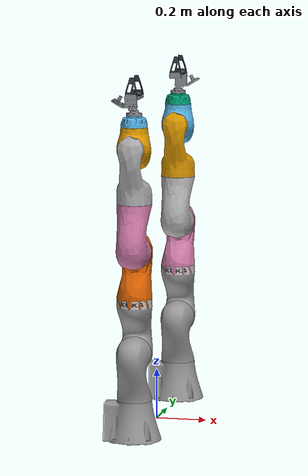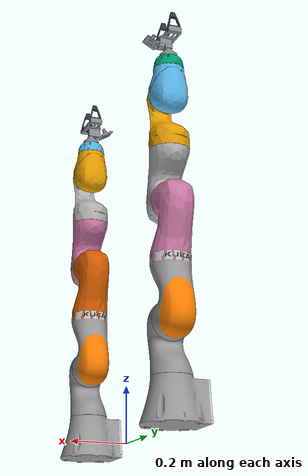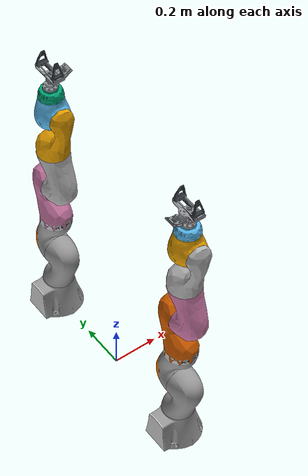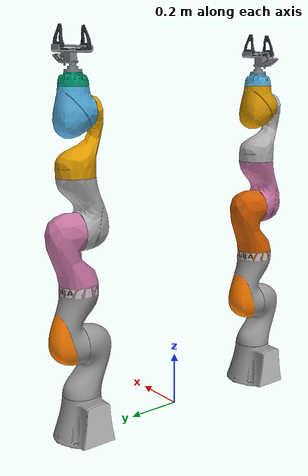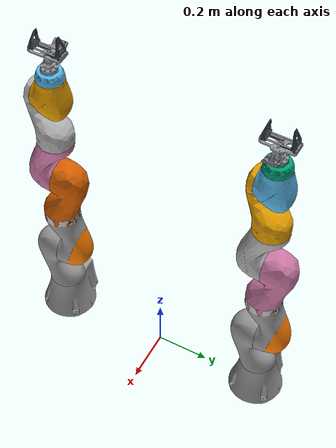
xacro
<?xml version="1.0"?>

<robot name="lbr_dual_arm" xmlns:xacro="http://www.ros.org/wiki/xacro">
    <!-- include the lbr iiwa macro -->
    <xacro:include filename="$(find lbr_description)/urdf/iiwa7/iiwa7_description.xacro" />

    <xacro:include filename="$(find lbr_description)/gazebo/lbr_gazebo.xacro" />

    <!-- include the Y-gripper macro -->
    <xacro:include filename="$(find lbr_dual_arm_description)/urdf/y_gripper.xacro" />

    <!-- include the pdz gripper macro (assets/pdz_gripper_description in the Fabrica repo,
    symlinked into this workspace's src/) -->
    <xacro:include filename="$(find pdz_gripper_description)/urdf/pdz_gripper_macro.xacro" />

    <!-- add an arguent to allow for mock / hardware / gazebo -->
    <xacro:arg name="mode" default="mock" />
    <xacro:property name="mode" value="$(arg mode)" />

    <!-- attach a Y-gripper to each arm's link_7 by default; pass
    use_gripper:=false for the bare flange (no end effector attached) -->
    <xacro:arg name="use_gripper" default="true" />
    <xacro:property name="use_gripper" value="$(arg use_gripper)" />

    <xacro:arg name="gripper" default="y_gripper" />
    <xacro:property name="gripper" value="$(arg gripper)" />

    <xacro:arg name="arm_control" default="joint_trajectory" />
    <xacro:property name="arm_control" value="$(arg arm_control)" />
    <xacro:property name="gazebo_command_mode"
        value="${'effort' if arm_control == 'cartesian_impedance' else 'position'}" />

    <xacro:arg name="robot_name" default="lbr_dual_arm_pdz" />
    <xacro:property name="robot_name" value="$(arg robot_name)" />

    <!-- collapse to the single combined plugin instance for gripper:=pdz OR for the
    cartesian-impedance bringup (both need "one controller_manager, two per-arm controller
    instances"). -->
    <xacro:property name="use_combined_gazebo_plugin"
        value="${gripper == 'pdz' or arm_control == 'cartesian_impedance'}" />
    <xacro:property name="spawn_gazebo_plugin" value="${not use_combined_gazebo_plugin}" />
    <xacro:property name="combined_gazebo_controllers_yaml"
        value="${'dual_arm_gazebo_cartesian_impedance_controllers.yaml' if arm_control == 'cartesian_impedance' else 'dual_arm_pdz_gazebo_controllers.yaml'}" />
    <xacro:property name="pdz_gazebo_controllers_yaml_path"
        value="$(find lbr_dual_arm_description)/ros2_control/${combined_gazebo_controllers_yaml}" />

    <xacro:property name="gazebo_robot_param_node" value="" />

    <xacro:arg name="arms" default="both" />
    <xacro:property name="arms" value="$(arg arms)" />
    <xacro:property name="lbr_one_mode" value="${'mock' if arms == 'lbr_two' else mode}" />
    <xacro:property name="lbr_two_mode" value="${'mock' if arms == 'lbr_one' else mode}" />

    <xacro:arg name="command_mode" default="position" />
    <xacro:property name="command_mode" value="$(arg command_mode)" />
    <xacro:property name="lbr_one_system_config"
        value="${'lbr_one_system_config_torque.yaml' if command_mode == 'torque' else 'lbr_one_system_config.yaml'}" />
    <xacro:property name="lbr_two_system_config"
        value="${'lbr_two_system_config_torque.yaml' if command_mode == 'torque' else 'lbr_two_system_config.yaml'}" />

    <!-- add a base link -->
    <link name="base_link" />

    <link name="world" />
    <joint name="world_joint" type="fixed">
        <parent link="world" />
        <child link="base_link" />
    </joint>

    <!-- add joints that connect the robots -->
    <joint name="lbr_one_base_joint" type="fixed">
        <origin xyz="0 -0.42 0" rpy="0 0 0" />
        <parent link="base_link" />
        <child link="lbr_one_link_0" />
    </joint>

    <joint name="lbr_two_base_joint" type="fixed">
        <origin xyz="0 0.42 0" rpy="0 0 0" />
        <parent link="base_link" />
        <child link="lbr_two_link_0" />
    </joint>

    <!-- add robot 1 via macro, note that different lbr_one_system_config.yaml are used (to
    configure port id) -->
    <xacro:iiwa7
        robot_name="lbr_one"
        mode="${lbr_one_mode}"
        system_config_path="$(find lbr_dual_arm_description)/ros2_control/${lbr_one_system_config}"
        initial_joint_positions_path="$(find lbr_dual_arm_description)/ros2_control/initial_joint_positions.yaml"
        gazebo_controllers_yaml_path="$(find lbr_description)/ros2_control/lbr_controllers.yaml"
        gazebo_robot_param_node="${gazebo_robot_param_node}"
        gazebo_command_mode="${gazebo_command_mode}"
        spawn_gazebo_plugin="${spawn_gazebo_plugin}" />

    <!-- add robot 2 via macro -->
    <xacro:iiwa7
        robot_name="lbr_two"
        mode="${lbr_two_mode}"
        system_config_path="$(find lbr_dual_arm_description)/ros2_control/${lbr_two_system_config}"
        initial_joint_positions_path="$(find lbr_dual_arm_description)/ros2_control/initial_joint_positions.yaml"
        gazebo_controllers_yaml_path="$(find lbr_description)/ros2_control/lbr_controllers.yaml"
        gazebo_robot_param_node="${gazebo_robot_param_node}"
        gazebo_command_mode="${gazebo_command_mode}"
        spawn_gazebo_plugin="${spawn_gazebo_plugin}" />

    <xacro:if value="${mode == 'gazebo' and use_combined_gazebo_plugin}">
        <xacro:lbr_gazebo_plugin robot_name="${robot_name}"
            controllers_yaml_path="${pdz_gazebo_controllers_yaml_path}"
            robot_param_node="${gazebo_robot_param_node}" />
    </xacro:if>

    <xacro:if value="${use_gripper}">
        <xacro:if value="${gripper == 'y_gripper'}">
            <xacro:y_gripper robot_name="lbr_one" mount_yaw="3.1415926535897931"
                camera_xyz="-0.055667 -0.009000 0.070776"
                camera_rpy="-0.523599 0.0 -1.570796"
                camera_to_tcp_xyz="-0.009000 0.010847 0.092546"
                camera_to_tcp_rpy="0.0 -0.523599 1.570796" />
            <xacro:y_gripper robot_name="lbr_two" />
        </xacro:if>

        <xacro:property name="pdz_gripper_hw_plugin"
            value="${'gz_ros2_control/GazeboSimSystem' if mode == 'gazebo' else 'mock_components/GenericSystem'}" />
        <xacro:if value="${gripper == 'pdz'}">
            <xacro:pdz_gripper parent="lbr_one_link_ee" prefix="lbr_one_">
                <origin xyz="0 0 0" rpy="0 0 -1.5707963267948966" />
            </xacro:pdz_gripper>
            <ros2_control name="lbr_one_pdz_gripper_system" type="system">
                <hardware>
                    <plugin>${pdz_gripper_hw_plugin}</plugin>
                </hardware>
                <joint name="lbr_one_pdz_gripper_left_finger_joint">
                    <command_interface name="position">
                        <param name="min">0</param>
                        <param name="max">0.032</param>
                    </command_interface>
                    <state_interface name="position">
                        <param name="initial_value">0.0</param>
                    </state_interface>
                    <state_interface name="velocity" />
                </joint>
                <joint name="lbr_one_pdz_gripper_right_finger_joint">
                    <state_interface name="position">
                        <param name="initial_value">0.0</param>
                    </state_interface>
                    <state_interface name="velocity" />
                </joint>
            </ros2_control>

            <xacro:pdz_gripper parent="lbr_two_link_ee" prefix="lbr_two_">
                <origin xyz="0 0 0" rpy="0 0 -1.5707963267948966" />
            </xacro:pdz_gripper>
            <ros2_control name="lbr_two_pdz_gripper_system" type="system">
                <hardware>
                    <plugin>${pdz_gripper_hw_plugin}</plugin>
                </hardware>
                <joint name="lbr_two_pdz_gripper_left_finger_joint">
                    <command_interface name="position">
                        <param name="min">0</param>
                        <param name="max">0.032</param>
                    </command_interface>
                    <state_interface name="position">
                        <param name="initial_value">0.0</param>
                    </state_interface>
                    <state_interface name="velocity" />
                </joint>
                <joint name="lbr_two_pdz_gripper_right_finger_joint">
                    <state_interface name="position">
                        <param name="initial_value">0.0</param>
                    </state_interface>
                    <state_interface name="velocity" />
                </joint>
            </ros2_control>
        </xacro:if>
    </xacro:if>
</robot>

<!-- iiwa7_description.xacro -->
<robot xmlns:xacro="http://www.ros.org/wiki/xacro">
    <!-- robot as extracted via https://github.com/syuntoku14/fusion2urdf -->
    <xacro:macro name="iiwa7"
        params="robot_name:=^|lbr mode:=^|mock system_config_path:=^|'$(find lbr_description)/ros2_control/lbr_system_config.yaml' joint_limits_path:=^|'$(find lbr_description)/urdf/iiwa7/joint_limits.yaml' initial_joint_positions_path:=^|'$(find lbr_description)/ros2_control/initial_joint_positions.yaml'">

        <!-- includes -->
        <xacro:include filename="$(find lbr_description)/gazebo/lbr_gazebo.xacro" />
        <xacro:include filename="$(find lbr_description)/ros2_control/lbr_system_interface.xacro" />

        <!-- joint limits via yaml -->
        <xacro:property name="joint_limits" value="${xacro.load_yaml(joint_limits_path)}" />

        <!-- constants -->
        <xacro:property name="PI" value="3.1415926535897931" />
        <xacro:property name="joint_damping" value="10.0" />
        <xacro:property name="joint_friction" value="0.1" />

        <!-- macros for gazebo / mock / hardware -->
        <xacro:lbr_gazebo robot_name="${robot_name}" />
        <xacro:lbr_system_interface
            robot_name="${robot_name}"
            mode="${mode}"
            joint_limits="${joint_limits}"
            system_config_path="${system_config_path}"
            initial_joint_positions_path="${initial_joint_positions_path}" />

        <link name="${robot_name}_link_0">
            <inertial>
                <origin rpy="0 0 0" xyz="-0.012857 0.0 0.069964" />
                <mass value="4.855658" />
                <inertia ixx="0.017839" ixy="0.0" ixz="0.000781" iyy="0.022294" iyz="0.0"
                    izz="0.021334" />
            </inertial>
            <visual>
                <origin rpy="0 0 0" xyz="0 0 0" />
                <geometry>
                    <mesh filename="package://lbr_description/meshes/iiwa7/visual/link_0.dae" />
                </geometry>
            </visual>
            <collision>
                <origin rpy="0 0 0" xyz="0 0 0" />
                <geometry>
                    <mesh filename="package://lbr_description/meshes/iiwa7/collision/link_0.stl" />
                </geometry>
            </collision>
        </link>

        <joint name="${robot_name}_A1" type="revolute">
            <origin rpy="0 0 0" xyz="0.0 0.0 0.1475" />
            <parent link="${robot_name}_link_0" />
            <child link="${robot_name}_link_1" />
            <axis xyz="0.0 0.0 1.0" />
            <limit
                effort="${joint_limits['A1']['effort']}"
                lower="${joint_limits['A1']['lower'] * PI / 180}"
                upper="${joint_limits['A1']['upper'] * PI / 180}"
                velocity="${joint_limits['A1']['velocity'] * PI / 180}" />
            <safety_controller
                soft_lower_limit="${joint_limits['A1']['lower'] * PI / 180}"
                soft_upper_limit="${joint_limits['A1']['upper'] * PI / 180}"
                k_position="${joint_limits['A1']['velocity'] / joint_limits['A1']['safety_position_margin']}"
                k_velocity="${joint_limits['A1']['k_velocity']}" />
            <dynamics damping="${joint_damping}" friction="${joint_friction}" />
        </joint>

        <link name="${robot_name}_link_1">
            <inertial>
                <origin rpy="0 0 0" xyz="0.0 -0.034819 0.123299" />
                <mass value="3.394011" />
                <inertia ixx="0.021383" ixy="0.0" ixz="0.0" iyy="0.020403" iyz="0.003797"
                    izz="0.007563" />
            </inertial>
            <visual>
                <origin rpy="0 0 0" xyz="0.0 0.0 -0.1475" />
                <geometry>
                    <mesh filename="package://lbr_description/meshes/iiwa7/visual/link_1.dae" />
                </geometry>
            </visual>
            <collision>
                <origin rpy="0 0 0" xyz="0.0 0.0 -0.1475" />
                <geometry>
                    <mesh filename="package://lbr_description/meshes/iiwa7/collision/link_1.stl" />
                </geometry>
            </collision>
        </link>

        <joint name="${robot_name}_A2" type="revolute">
            <origin rpy="0 0 0" xyz="0.0 -0.0105 0.1925" />
            <parent link="${robot_name}_link_1" />
            <child link="${robot_name}_link_2" />
            <axis xyz="0.0 1.0 0.0" />
            <limit
                effort="${joint_limits['A2']['effort']}"
                lower="${joint_limits['A2']['lower'] * PI / 180}"
                upper="${joint_limits['A2']['upper'] * PI / 180}"
                velocity="${joint_limits['A2']['velocity'] * PI / 180}" />
            <safety_controller
                soft_lower_limit="${joint_limits['A2']['lower'] * PI / 180}"
                soft_upper_limit="${joint_limits['A2']['upper'] * PI / 180}"
                k_position="${joint_limits['A2']['velocity'] / joint_limits['A2']['safety_position_margin']}"
                k_velocity="${joint_limits['A2']['k_velocity']}" />
            <dynamics damping="${joint_damping}" friction="${joint_friction}" />
        </joint>

        <link name="${robot_name}_link_2">
            <inertial>
                <origin rpy="0 0 0" xyz="0.0 0.039793 0.086944" />
                <mass value="4.031991" />
                <inertia ixx="0.031697" ixy="0.0" ixz="0.0" iyy="0.03008" iyz="0.005889"
                    izz="0.009666" />
            </inertial>
            <visual>
                <origin rpy="0 0 0" xyz="0.0 0.0105 -0.34" />
                <geometry>
                    <mesh filename="package://lbr_description/meshes/iiwa7/visual/link_2.dae" />
                </geometry>
            </visual>
            <collision>
                <origin rpy="0 0 0" xyz="0.0 0.0105 -0.34" />
                <geometry>
                    <mesh filename="package://lbr_description/meshes/iiwa7/collision/link_2.stl" />
                </geometry>
            </collision>
        </link>

        <joint name="${robot_name}_A3" type="revolute">
            <origin rpy="0 0 0" xyz="0.0 0.0105 0.2075" />
            <parent link="${robot_name}_link_2" />
            <child link="${robot_name}_link_3" />
            <axis xyz="0.0 0.0 1.0" />
            <limit
                effort="${joint_limits['A3']['effort']}"
                lower="${joint_limits['A3']['lower'] * PI / 180}"
                upper="${joint_limits['A3']['upper'] * PI / 180}"
                velocity="${joint_limits['A3']['velocity'] * PI / 180}" />
            <safety_controller
                soft_lower_limit="${joint_limits['A3']['lower'] * PI / 180}"
                soft_upper_limit="${joint_limits['A3']['upper'] * PI / 180}"
                k_position="${joint_limits['A3']['velocity'] / joint_limits['A3']['safety_position_margin']}"
                k_velocity="${joint_limits['A3']['k_velocity']}" />
            <dynamics damping="${joint_damping}" friction="${joint_friction}" />
        </joint>

        <link name="${robot_name}_link_3">
            <inertial>
                <origin rpy="0 0 0" xyz="0.0 0.034819 0.123299" />
                <mass value="3.394011" />
                <inertia ixx="0.021383" ixy="0.0" ixz="0.0" iyy="0.020403" iyz="-0.003797"
                    izz="0.007563" />
            </inertial>
            <visual>
                <origin rpy="0 0 0" xyz="0.0 0.0 -0.5475" />
                <geometry>
                    <mesh filename="package://lbr_description/meshes/iiwa7/visual/link_3.dae" />
                </geometry>
            </visual>
            <collision>
                <origin rpy="0 0 0" xyz="0.0 0.0 -0.5475" />
                <geometry>
                    <mesh filename="package://lbr_description/meshes/iiwa7/collision/link_3.stl" />
                </geometry>
            </collision>
        </link>

        <joint name="${robot_name}_A4" type="revolute">
            <origin rpy="0 0 0" xyz="0.0 0.0105 0.1925" />
            <parent link="${robot_name}_link_3" />
            <child link="${robot_name}_link_4" />
            <axis xyz="0.0 -1.0 0.0" />
            <limit
                effort="${joint_limits['A4']['effort']}"
                lower="${joint_limits['A4']['lower'] * PI / 180}"
                upper="${joint_limits['A4']['upper'] * PI / 180}"
                velocity="${joint_limits['A4']['velocity'] * PI / 180}" />
            <safety_controller
                soft_lower_limit="${joint_limits['A4']['lower'] * PI / 180}"
                soft_upper_limit="${joint_limits['A4']['upper'] * PI / 180}"
                k_position="${joint_limits['A4']['velocity'] / joint_limits['A4']['safety_position_margin']}"
                k_velocity="${joint_limits['A4']['k_velocity']}" />
            <dynamics damping="${joint_damping}" friction="${joint_friction}" />
        </joint>

        <link name="${robot_name}_link_4">
            <inertial>
                <origin rpy="0 0 0" xyz="0.0 -0.039793 0.086944" />
                <mass value="4.031989" />
                <inertia ixx="0.031695" ixy="0.0" ixz="0.0" iyy="0.030079" iyz="-0.005889"
                    izz="0.009665" />
            </inertial>
            <visual>
                <origin rpy="0 0 0" xyz="0.0 -0.0105 -0.74" />
                <geometry>
                    <mesh filename="package://lbr_description/meshes/iiwa7/visual/link_4.dae" />
                </geometry>
            </visual>
            <collision>
                <origin rpy="0 0 0" xyz="0.0 -0.0105 -0.74" />
                <geometry>
                    <mesh filename="package://lbr_description/meshes/iiwa7/collision/link_4.stl" />
                </geometry>
            </collision>
        </link>

        <joint name="${robot_name}_A5" type="revolute">
            <origin rpy="0 0 0" xyz="0.0 -0.0105 0.2075" />
            <parent link="${robot_name}_link_4" />
            <child link="${robot_name}_link_5" />
            <axis xyz="0.0 0.0 1.0" />
            <limit
                effort="${joint_limits['A5']['effort']}"
                lower="${joint_limits['A5']['lower'] * PI / 180}"
                upper="${joint_limits['A5']['upper'] * PI / 180}"
                velocity="${joint_limits['A5']['velocity'] * PI / 180}" />
            <safety_controller
                soft_lower_limit="${joint_limits['A5']['lower'] * PI / 180}"
                soft_upper_limit="${joint_limits['A5']['upper'] * PI / 180}"
                k_position="${joint_limits['A5']['velocity'] / joint_limits['A5']['safety_position_margin']}"
                k_velocity="${joint_limits['A5']['k_velocity']}" />
            <dynamics damping="${joint_damping}" friction="${joint_friction}" />
        </joint>

        <link name="${robot_name}_link_5">
            <inertial>
                <origin rpy="0 0 0" xyz="0.0 -0.029824 0.076267" />
                <mass value="1.529239" />
                <inertia ixx="0.008485" ixy="0.0" ixz="0.0" iyy="0.007136" iyz="0.002806"
                    izz="0.003848" />
            </inertial>
            <visual>
                <origin rpy="0 0 0" xyz="0.0 0.0 -0.9475" />
                <geometry>
                    <mesh filename="package://lbr_description/meshes/iiwa7/visual/link_5.dae" />
                </geometry>
            </visual>
            <collision>
                <origin rpy="0 0 0" xyz="0.0 0.0 -0.9475" />
                <geometry>
                    <mesh filename="package://lbr_description/meshes/iiwa7/collision/link_5.stl" />
                </geometry>
            </collision>
        </link>

        <joint name="${robot_name}_A6" type="revolute">
            <origin rpy="0 0 0" xyz="0.0 -0.0707 0.1925" />
            <parent link="${robot_name}_link_5" />
            <child link="${robot_name}_link_6" />
            <axis xyz="0.0 1.0 0.0" />
            <limit
                effort="${joint_limits['A6']['effort']}"
                lower="${joint_limits['A6']['lower'] * PI / 180}"
                upper="${joint_limits['A6']['upper'] * PI / 180}"
                velocity="${joint_limits['A6']['velocity'] * PI / 180}" />
            <safety_controller
                soft_lower_limit="${joint_limits['A6']['lower'] * PI / 180}"
                soft_upper_limit="${joint_limits['A6']['upper'] * PI / 180}"
                k_position="${joint_limits['A6']['velocity'] / joint_limits['A6']['safety_position_margin']}"
                k_velocity="${joint_limits['A6']['k_velocity']}" />
            <dynamics damping="${joint_damping}" friction="${joint_friction}" />
        </joint>

        <link name="${robot_name}_link_6">
            <inertial>
                <origin rpy="0 0 0" xyz="0.0 0.07102 0.00495" />
                <mass value="2.403626" />
                <inertia ixx="0.007067" ixy="0.0" ixz="0.0" iyy="0.006804" iyz="0.000311"
                    izz="0.004629" />
            </inertial>
            <visual>
                <origin rpy="0 0 0" xyz="0.0 0.0707 -1.14" />
                <geometry>
                    <mesh filename="package://lbr_description/meshes/iiwa7/visual/link_6.dae" />
                </geometry>
            </visual>
            <collision>
                <origin rpy="0 0 0" xyz="0.0 0.0707 -1.14" />
                <geometry>
                    <mesh filename="package://lbr_description/meshes/iiwa7/collision/link_6.stl" />
                </geometry>
            </collision>
        </link>

        <joint name="${robot_name}_A7" type="revolute">
            <origin rpy="0 0 0" xyz="0.0 0.0707 0.091" />
            <parent link="${robot_name}_link_6" />
            <child link="${robot_name}_link_7" />
            <axis xyz="0.0 0.0 1.0" />
            <limit
                effort="${joint_limits['A7']['effort']}"
                lower="${joint_limits['A7']['lower'] * PI / 180}"
                upper="${joint_limits['A7']['upper'] * PI / 180}"
                velocity="${joint_limits['A7']['velocity'] * PI / 180}" />
            <safety_controller
                soft_lower_limit="${joint_limits['A7']['lower'] * PI / 180}"
                soft_upper_limit="${joint_limits['A7']['upper'] * PI / 180}"
                k_position="${joint_limits['A7']['velocity'] / joint_limits['A7']['safety_position_margin']}"
                k_velocity="${joint_limits['A7']['k_velocity']}" />
            <dynamics damping="${joint_damping}" friction="${joint_friction}" />
        </joint>

        <link name="${robot_name}_link_7">
            <inertial>
                <origin rpy="0 0 0" xyz="3.0000e-06 -2.0000e-06 1.3782e-02" />
                <mass value="0.259474" />
                <inertia ixx="0.000171" ixy="0.0" ixz="0.0" iyy="0.000171" iyz="0.0" izz="0.000299" />
            </inertial>
            <visual>
                <origin rpy="0 0 0" xyz="0.0 0.0 -1.231" />
                <geometry>
                    <mesh filename="package://lbr_description/meshes/iiwa7/visual/link_7.dae" />
                </geometry>
            </visual>
            <collision>
                <origin rpy="0 0 0" xyz="0.0 0.0 -1.231" />
                <geometry>
                    <mesh filename="package://lbr_description/meshes/iiwa7/collision/link_7.stl" />
                </geometry>
            </collision>
        </link>

        <joint name="${robot_name}_joint_ee" type="fixed">
            <parent link="${robot_name}_link_7" />
            <child link="${robot_name}_link_ee" />
            <origin xyz="0 0 0.035" rpy="0 0 0" />
        </joint>

        <link name="${robot_name}_link_ee">
        </link>
    </xacro:macro>
</robot>

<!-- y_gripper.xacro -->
<robot xmlns:xacro="http://www.ros.org/wiki/xacro">
    <xacro:macro name="y_gripper" params="
        robot_name
        mount_yaw:=0
        camera_xyz:='0.055667 0.009000 0.070776'
        camera_rpy:='-0.523599 0.0 1.570796'
        camera_to_tcp_xyz:='-0.009000 0.010847 0.092546'
        camera_to_tcp_rpy:='0.0 0.523599 -1.570796'">
        <link name="${robot_name}_gripper_base_link">
            <inertial>
                <origin xyz="0.0273839865 0 0.0414999998" rpy="0 0 0" />
                <mass value="0.8" />
                <inertia ixx="0.00166886667" ixy="0" ixz="0" iyy="0.00145432361" iyz="0"
                    izz="0.00196999027" />
            </inertial>
            <visual>
                <origin xyz="0 0 0" rpy="0 0 0" />
                <geometry>
                    <mesh filename="package://lbr_dual_arm_description/meshes/y_gripper/hand.STL"
                        scale="0.001 0.001 0.001" />
                </geometry>
                <material name="gripper_body">
                    <color rgba="0.55 0.56 0.58 1" />
                </material>
            </visual>
            <collision>
                <origin xyz="0 0 0" rpy="0 0 0" />
                <geometry>
                    <mesh filename="package://lbr_dual_arm_description/meshes/y_gripper/hand.STL"
                        scale="0.001 0.001 0.001" />
                </geometry>
            </collision>
        </link>

        <link name="${robot_name}_left_finger_link">
            <inertial>
                <origin xyz="0 -0.0275000005 0.1105" rpy="0 0 0" />
                <mass value="0.08" />
                <inertia ixx="6.74733326e-05" ixy="0" ixz="0" iyy="5.67733333e-05" iyz="0"
                    izz="3.89133326e-05" />
            </inertial>
            <visual>
                <origin xyz="0 0 0" rpy="0 0 0" />
                <geometry>
                    <mesh
                        filename="package://lbr_dual_arm_description/meshes/y_gripper/left_finger.STL"
                        scale="0.001 0.001 0.001" />
                </geometry>
                <material name="finger_dark">
                    <color rgba="0.17 0.2 0.22 1" />
                </material>
            </visual>
            <collision>
                <origin xyz="0 0 0" rpy="0 0 0" />
                <geometry>
                    <mesh
                        filename="package://lbr_dual_arm_description/meshes/y_gripper/left_finger.STL"
                        scale="0.001 0.001 0.001" />
                </geometry>
            </collision>
        </link>

        <link name="${robot_name}_right_finger_link">
            <inertial>
                <origin xyz="0 0.0275000005 0.1105" rpy="0 0 0" />
                <mass value="0.08" />
                <inertia ixx="6.74733326e-05" ixy="0" ixz="0" iyy="5.67733333e-05" iyz="0"
                    izz="3.89133326e-05" />
            </inertial>
            <visual>
                <origin xyz="0 0 0" rpy="0 0 0" />
                <geometry>
                    <mesh
                        filename="package://lbr_dual_arm_description/meshes/y_gripper/right_finger.STL"
                        scale="0.001 0.001 0.001" />
                </geometry>
                <material name="finger_dark">
                    <color rgba="0.17 0.2 0.22 1" />
                </material>
            </visual>
            <collision>
                <origin xyz="0 0 0" rpy="0 0 0" />
                <geometry>
                    <mesh
                        filename="package://lbr_dual_arm_description/meshes/y_gripper/right_finger.STL"
                        scale="0.001 0.001 0.001" />
                </geometry>
            </collision>
        </link>

        <link name="${robot_name}_gripper_tcp">
            <inertial>
                <origin xyz="0 0 0" rpy="0 0 0" />
                <mass value="0.001" />
                <inertia ixx="1e-07" ixy="0" ixz="0" iyy="1e-07" iyz="0" izz="1e-07" />
            </inertial>
        </link>

        <link name="${robot_name}_realsense_link">
            <inertial>
                <origin xyz="0 0 0" rpy="0 0 0" />
                <mass value="0.06" />
                <inertia ixx="1.1465e-05" ixy="0" ixz="0" iyy="1.189e-05" iyz="0"
                    izz="1.8065e-05" />
            </inertial>
        </link>

        <joint name="${robot_name}_gripper_mount_joint" type="fixed">
            <origin xyz="0 0 0" rpy="0 0 ${mount_yaw}" />
            <parent link="${robot_name}_link_ee" />
            <child link="${robot_name}_gripper_base_link" />
        </joint>

        <joint name="${robot_name}_realsense_mount_joint" type="fixed">
            <origin xyz="${camera_xyz}" rpy="${camera_rpy}" />
            <parent link="${robot_name}_gripper_base_link" />
            <child link="${robot_name}_realsense_link" />
        </joint>

        <joint name="${robot_name}_gripper_tcp_joint" type="fixed">
            <origin xyz="${camera_to_tcp_xyz}" rpy="${camera_to_tcp_rpy}" />
            <parent link="${robot_name}_realsense_link" />
            <child link="${robot_name}_gripper_tcp" />
        </joint>

        <joint name="${robot_name}_left_finger_joint" type="prismatic">
            <origin xyz="0 0 0" rpy="0 0 0" />
            <parent link="${robot_name}_gripper_base_link" />
            <child link="${robot_name}_left_finger_link" />
            <axis xyz="0 1 0" />
            <limit lower="0" upper="0.04" effort="100" velocity="0.2" />
            <dynamics damping="10.0" friction="0.0" />
        </joint>

        <joint name="${robot_name}_right_finger_joint" type="prismatic">
            <origin xyz="0 0 0" rpy="0 0 0" />
            <parent link="${robot_name}_gripper_base_link" />
            <child link="${robot_name}_right_finger_link" />
            <axis xyz="0 -1 0" />
            <limit lower="0" upper="0.04" effort="100" velocity="0.2" />
            <dynamics damping="10.0" friction="0.0" />
            <mimic joint="${robot_name}_left_finger_joint" multiplier="1" offset="0" />
        </joint>

        <ros2_control name="${robot_name}_gripper_system" type="system">
            <hardware>
                <plugin>mock_components/GenericSystem</plugin>
            </hardware>
            <joint name="${robot_name}_left_finger_joint">
                <command_interface name="position">
                    <param name="min">0</param>
                    <param name="max">0.04</param>
                </command_interface>
                <state_interface name="position">
                    <param name="initial_value">0.0</param>
                </state_interface>
            </joint>
        </ros2_control>
    </xacro:macro>
</robot>
